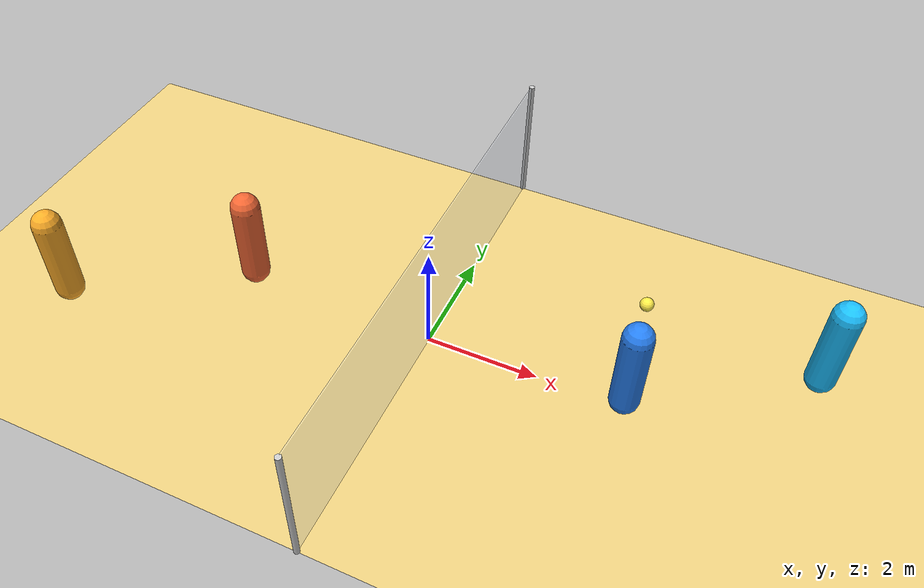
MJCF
<mujoco model="volleyball_mvp">

  <!-- autolimits: automatically enforce joint ranges (MuJoCo 3.x feature) -->
  <compiler autolimits="true"/>

  <!--
    gravity    = standard Earth gravity (m/s²)
    timestep   = 2 ms  →  500 physics steps per second; stable for contacts
    integrator = Euler — simple, fast; works well at this timestep
  -->
  <option gravity="0 0 -9.81" timestep="0.002" integrator="Euler"/>

  <!-- ── Visual atmosphere ──────────────────────────────────────────────── -->
  <visual>
    <headlight ambient="0.45 0.45 0.45" diffuse="0.8 0.8 0.8" specular="0.1 0.1 0.1"/>
    <rgba haze="0.15 0.25 0.35 1"/>
  </visual>

  <!-- ── Textures & materials ───────────────────────────────────────────── -->
  <asset>
    <texture name="sky_tex"   type="skybox" builtin="gradient"
             rgb1="0.4 0.65 0.95" rgb2="0.05 0.10 0.35"
             width="512" height="512"/>

    <!--
      Checker-board court texture.
      mark="edge" draws thin lines at checker boundaries → looks like court tiles.
    -->
    <texture name="court_tex" type="2d" builtin="checker"
             rgb1="0.95 0.85 0.55" rgb2="0.88 0.76 0.44"
             width="1024" height="512" mark="edge" markrgb="0.85 0.72 0.38"/>

    <material name="court_mat"  texture="court_tex" texrepeat="9 4.5"
              reflectance="0.05" specular="0.05" shininess="0.1"/>
    <material name="net_mat"    rgba="0.90 0.95 1.00 0.24"/>
    <material name="ball_mat"   rgba="1.0 0.93 0.28 1"
              specular="0.6" shininess="0.9"/>
    <material name="player_mat"  rgba="0.15 0.50 0.95 1"
              specular="0.3" shininess="0.5"/>
    <material name="player3_mat" rgba="0.10 0.75 1.00 1"
              specular="0.3" shininess="0.5"/>
    <material name="player2_mat" rgba="0.95 0.40 0.20 1"
              specular="0.3" shininess="0.5"/>
    <material name="player4_mat" rgba="1.00 0.68 0.15 1"
              specular="0.3" shininess="0.5"/>
    <material name="post_mat"    rgba="0.80 0.80 0.80 1"
              specular="0.6" shininess="0.8"/>
  </asset>

  <!-- ══ Scene ══════════════════════════════════════════════════════════════ -->
  <worldbody>

    <geom name="floor"
          type="plane" size="9 4.5 0.1"
          material="court_mat"
          friction="0.6 0.005 0.0001"
          solimp="0.99 0.999 0.001 0.5 2"
          solref="0.005 1.0"/>

    <!-- ── Net posts ──────────────────────────────────────────────────────
         size = [radius, half_height] for a cylinder.
         Centred at Z = 1.215 m (half of 2.43 m net height).
    -->
    <geom name="post_left"
          type="cylinder" size="0.05 1.215"
          pos="0.0 -4.5 1.215"
          material="post_mat"/>
    <geom name="post_right"
          type="cylinder" size="0.05 1.215"
          pos="0.0  4.5 1.215"
          material="post_mat"/>

    <geom name="net"
          type="box" size="0.012 4.5 1.215"
          pos="0.0 0.0 1.215"
          material="net_mat"
          friction="0.3 0.005 0.0001"
          solimp="0.99 0.999 0.001 0.5 2"
          solref="0.005 1.0"/>

    <body name="ball" pos="3.5 0.0 2.5">
      <freejoint name="ball_joint"/>
      <geom name="ball_geom"
            type="sphere" size="0.105"
            mass="0.27"
            material="ball_mat"
            friction="0.4 0.005 0.0001"
            solimp="0.85 0.97 0.001 0.5 2"
            solref="0.01 0.75"
            condim="3"/>
    </body>

    <body name="player" pos="3.5 0.0 1.0">
      <joint name="slide_y" type="slide" axis="0 1 0"
             range="-3.8 3.8" damping="25" stiffness="0"/>
      <joint name="slide_x" type="slide" axis="1 0 0"
             range="-3.2 5.4" damping="25" stiffness="0"/>
      <joint name="slide_z" type="slide" axis="0 0 1"
             range="-0.1 4.0" damping="5" stiffness="0"/>
      <geom name="player_geom"
            type="capsule" size="0.26 0.74"
            mass="75"
            material="player_mat"
            friction="0.6 0.005 0.0001"
            solimp="0.99 0.999 0.001 0.5 2"
            solref="0.005 1.0"
            condim="3"/>
    </body>

    <body name="player2" pos="-3.5 0.0 1.0">
      <joint name="slide_y2" type="slide" axis="0 1 0"
             range="-3.8 3.8" damping="25" stiffness="0"/>
      <joint name="slide_x2" type="slide" axis="1 0 0"
             range="-5.4 3.2" damping="25" stiffness="0"/>
      <joint name="slide_z2" type="slide" axis="0 0 1"
             range="-0.1 4.0" damping="5" stiffness="0"/>
      <geom name="player2_geom"
            type="capsule" size="0.26 0.74"
            mass="75"
            material="player2_mat"
            friction="0.6 0.005 0.0001"
            solimp="0.99 0.999 0.001 0.5 2"
            solref="0.005 1.0"
            condim="3"/>
    </body>

    <body name="player3" pos="6.3 1.8 1.0">
      <joint name="slide_y3" type="slide" axis="0 1 0"
             range="-5.6 2.0" damping="25" stiffness="0"/>
      <joint name="slide_x3" type="slide" axis="1 0 0"
             range="-6.0 2.6" damping="25" stiffness="0"/>
      <joint name="slide_z3" type="slide" axis="0 0 1"
             range="-0.1 4.0" damping="5" stiffness="0"/>
      <geom name="player3_geom"
            type="capsule" size="0.26 0.74"
            mass="75"
            material="player3_mat"
            friction="0.6 0.005 0.0001"
            solimp="0.99 0.999 0.001 0.5 2"
            solref="0.005 1.0"
            condim="3"/>
    </body>

    <body name="player4" pos="-6.3 -1.8 1.0">
      <joint name="slide_y4" type="slide" axis="0 1 0"
             range="-2.0 5.6" damping="25" stiffness="0"/>
      <joint name="slide_x4" type="slide" axis="1 0 0"
             range="-2.6 6.0" damping="25" stiffness="0"/>
      <joint name="slide_z4" type="slide" axis="0 0 1"
             range="-0.1 4.0" damping="5" stiffness="0"/>
      <geom name="player4_geom"
            type="capsule" size="0.26 0.74"
            mass="75"
            material="player4_mat"
            friction="0.6 0.005 0.0001"
            solimp="0.99 0.999 0.001 0.5 2"
            solref="0.005 1.0"
            condim="3"/>
    </body>

  </worldbody>

  <actuator>
    <!-- Lateral movement — left / right along the net (Y axis) -->
    <motor name="act_y" joint="slide_y" gear="1"
           ctrllimited="true" ctrlrange="-600 600"/>
    <!-- Depth movement — toward / away from the net (X axis) -->
    <motor name="act_x" joint="slide_x" gear="1"
           ctrllimited="true" ctrlrange="-600 600"/>
    <!-- Vertical movement — jump / hit upward (Z axis).
         Large upper limit (8000 N) lets a short burst produce a visible jump. -->
    <motor name="act_z" joint="slide_z" gear="1"
           ctrllimited="true" ctrlrange="-200 8000"/>

    <!-- Player 2: same three motors on the mirrored joints -->
    <motor name="act_y2" joint="slide_y2" gear="1"
           ctrllimited="true" ctrlrange="-600 600"/>
    <motor name="act_x2" joint="slide_x2" gear="1"
           ctrllimited="true" ctrlrange="-600 600"/>
    <motor name="act_z2" joint="slide_z2" gear="1"
           ctrllimited="true" ctrlrange="-200 8000"/>

    <motor name="act_y3" joint="slide_y3" gear="1"
           ctrllimited="true" ctrlrange="-600 600"/>
    <motor name="act_x3" joint="slide_x3" gear="1"
           ctrllimited="true" ctrlrange="-600 600"/>
    <motor name="act_z3" joint="slide_z3" gear="1"
           ctrllimited="true" ctrlrange="-200 8000"/>

    <motor name="act_y4" joint="slide_y4" gear="1"
           ctrllimited="true" ctrlrange="-600 600"/>
    <motor name="act_x4" joint="slide_x4" gear="1"
           ctrllimited="true" ctrlrange="-600 600"/>
    <motor name="act_z4" joint="slide_z4" gear="1"
           ctrllimited="true" ctrlrange="-200 8000"/>
  </actuator>

</mujoco>
